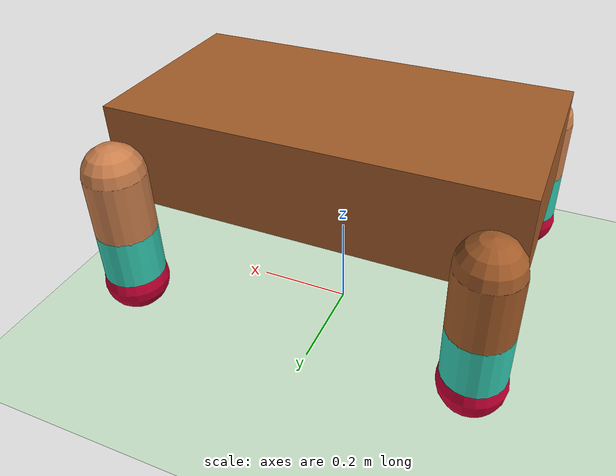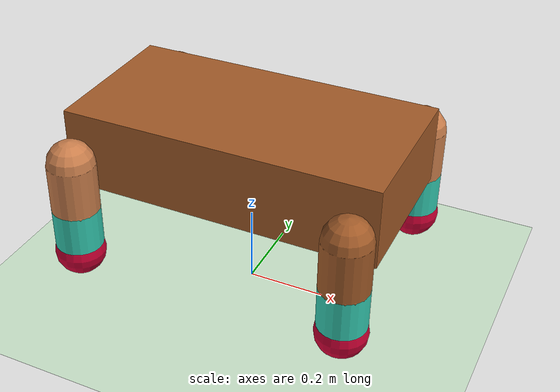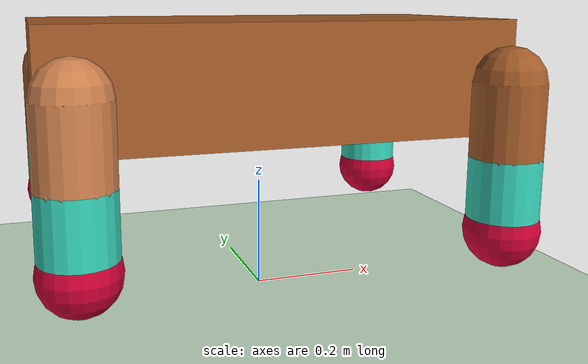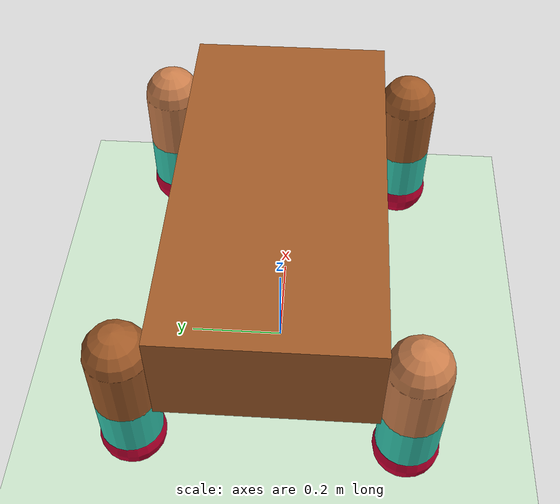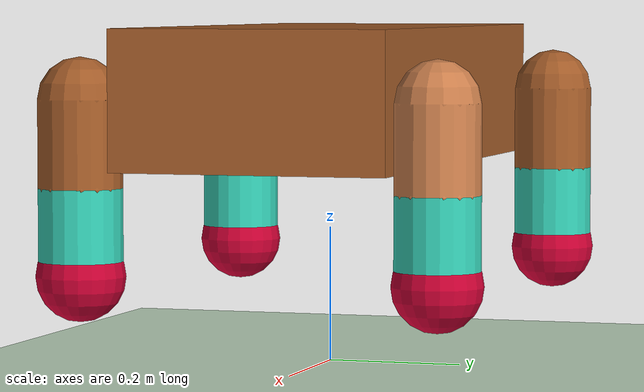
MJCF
<mujoco model="quad_world">
	<compiler angle="degree" inertiafromgeom="true" />

	<default>
		<joint armature="0" damping="1" limited="true" />
		<geom condim="3" material="matgeom" />
		<motor ctrllimited="true" ctrlrange="-.4 .4" gear="40" />
		<tendon damping="300" stiffness="4000" />
	</default>

	<option cone="pyramidal" iterations="50" jacobian="dense" solver="Newton" timestep="0.005" tolerance="1e-10" />

	<size nconmax="320" njmax="1100" nstack="10000" />

	<visual>
		<map force="0.1" zfar="30" />
		<quality shadowsize="2048" />
		<global offheight="800" offwidth="800" />
	</visual>

	<asset>
		<texture builtin="gradient" height="512" rgb1="0.3 0.5 0.7" rgb2="0 0 0" type="skybox" width="512" />
		<texture builtin="flat" height="1278" mark="cross" markrgb="1 1 1" name="texgeom" random="0.01" rgb1="0.8 0.6 0.4" rgb2="0.8 0.6 0.4" type="cube" width="127" />
		<texture builtin="checker" height="512" mark="cross" markrgb=".8 .8 .8" name="texplane" rgb1=".2 .3 .4" rgb2=".1 0.15 0.2" type="2d" width="512" />
		<material name="matgeom" rgba="0.8 0.6 .4 1" texture="texgeom" texuniform="true" />
		<material name="MatPlane" reflectance="0.5" shininess="1" specular="1" texrepeat="60 60" texture="texplane"/>
		<hfield file="heightfieldRough1.png" name="field1" size="8 8 0.05 0.15" />

	</asset>

	<worldbody>

		<light cutoff="100" diffuse="1 1 1" dir="-0 0 -1.3" directional="true" exponent="1" pos="0 0 1.3" specular=".1 .1 .1"/>
		<geom conaffinity="1" condim="3" material="MatPlane" name="floor" pos="0 0 0" rgba="0.8 0.9 0.8 1" size="40 40 40" type="plane"/>

		<body name="torso" pos="0 0 0.4">
			<freejoint name="root" />
			<geom name="torso_geom" pos="0 0 0" size="0.4 0.2 0.1" type="box" />
			<site name="gyroSensorSite" pos="0 0 0" size="0.005" />

			<body name="upper_front_left_leg" pos="0.35 0.26 0.00">
				<geom fromto="0.0 0.0 0.0 0.0 0.0 -0.125" name="upper_aux_1_geom" rgba=".8 .5 .3 1" size="0.06" type="capsule" />
				<site name="s1_1" pos="0 0 -0.125" size="0.005" />
				<body name="lower_front_left_leg" pos="0 0 -0.125">
					<geom fromto="0.0 0.0 0.0 0.0 0.0 -0.125" name="lower_aux_1_geom" rgba=".2 .8 .7 1" size="0.06" type="capsule" />
					<site name="s1_2" pos="0 0 0" size="0.005" />
					<site name="touchSite1" pos="0 0 -0.125" rgba="0.8 0 0.2 1" size="0.064 0.064 0.064" type="sphere" />
				</body>
				<joint axis="0 1 0" name="hip_1" pos="0.0 0.0 0.0" range="-90 90" type="hinge" />
				<joint axis="1 0 0" name="side_1" pos="0.0 0.0 0.0" range="-10 10" type="hinge" />
			</body>
			<body name="upper_front_right_leg" pos="0.35 -0.26 0.00">
				<geom fromto="0.0 0.0 0.0 0.0 0.0 -0.125" name="upper_aux_2_geom" size="0.06" type="capsule" />
				<site name="s2_1" pos="0 0 -0.125" size="0.005" />
				<body name="lower_front_right_leg" pos="0 0 -0.125">
					<geom fromto="0.0 0.0 0.0 0.0 0.0 -0.125" name="lower_aux_2_geom" rgba=".2 .8 .7 1" size="0.06" type="capsule" />
					<site name="s2_2" pos="0 0 0" size="0.005" />
					<site name="touchSite2" pos="0 0 -0.125" rgba="0.8 0 0.2 1" size="0.064 0.064 0.064" type="sphere" />
				</body>
				<joint axis="0 1 0" name="hip_2" pos="0.0 0.0 0.0" range="-90 90" type="hinge" />
				<joint axis="1 0 0" name="side_2" pos="0.0 0.0 0.0" range="-10 10" type="hinge" />
			</body>
			<body name="upper_left_back_leg" pos="-0.35 0.26 0.00">
				<geom fromto="0.0 0.0 0.0 0.0 0.0 -0.125" name="upper_aux_3_geom" size="0.06" type="capsule" />
				<site name="s3_1" pos="0 0 -0.125" size="0.005" />
				<body name="lower_left_back_leg" pos="0 0 -0.125">
					<geom fromto="0.0 0.0 0.0 0.0 0.0 -0.125" name="lower_aux_3_geom" rgba=".2 .8 .7 1" size="0.06" type="capsule" />
					<site name="s3_2" pos="0 0 0" size="0.005" />
					<site name="touchSite3" pos="0 0 -0.125" rgba="0.8 0 0.2 1" size="0.064 0.064 0.064" type="sphere" />
				</body>
				<joint axis="0 1 0" name="hip_3" pos="0.0 0.0 0.0" range="-90 90" type="hinge" />
				<joint axis="1 0 0" name="side_3" pos="0.0 0.0 0.0" range="-10 10" type="hinge" />
			</body>
			<body name="upper_right_back_leg" pos="-0.35 -0.26 0.0">
				<geom fromto="0.0 0.0 0.0 0.0 0.0 -0.125" name="upper_aux_4_geom" rgba=".8 .5 .3 1" size="0.06" type="capsule" />
				<site name="s4_1" pos="0 0 -0.125" size="0.005" />
				<body name="lower_right_back_leg" pos="0 0 -0.125">
					<geom fromto="0.0 0.0 0.0 0.0 0.0 -0.125" name="lower_aux_4_geom" rgba=".2 .8 .7 1" size="0.06" type="capsule" />
					<site name="s4_2" pos="0 0 0" size="0.005" />
					<site name="touchSite4" pos="0 0 -0.125" rgba="0.8 0 0.2 1" size="0.064 0.064 0.064" type="sphere" />
				</body>
				<joint axis="0 1 0" name="hip_4" pos="0.0 0.0 0.0" range="-90 90" type="hinge" />
				<joint axis="1 0 0" name="side_4" pos="0.0 0.0 0.0" range="-10 10" type="hinge" />
			</body>
		</body>
	</worldbody>

	<tendon>
		<spatial limited="true" name="tend1" range="0 1" rgba=".95 .3 .3 1" width="0.02">
			<site site="s1_1" />
			<site site="s1_2" />
		</spatial>
		<spatial limited="true" name="tend2" range="0 1" rgba=".95 .3 .3 1" width="0.02">
			<site site="s2_1" />
			<site site="s2_2" />
		</spatial>
		<spatial limited="true" name="tend3" range="0 1" rgba=".95 .3 .3 1" width="0.02">
			<site site="s3_1" />
			<site site="s3_2" />
		</spatial>
		<spatial limited="true" name="tend4" range="0 1" rgba=".95 .3 .3 1" width="0.02">
			<site site="s4_1" />
			<site site="s4_2" />
		</spatial>
	</tendon>

	<actuator>
		<motor ctrllimited="true" ctrlrange="-1.0 1.0" gear="500" tendon="tend1" />
		<motor ctrllimited="true" ctrlrange="-1.0 1.0" gear="500" tendon="tend2" />
		<motor ctrllimited="true" ctrlrange="-1.0 1.0" gear="500" tendon="tend3" />
		<motor ctrllimited="true" ctrlrange="-1.0 1.0" gear="500" tendon="tend4" />
		<motor ctrllimited="true" ctrlrange="-5.0 5.0" joint="hip_1" />
		<motor ctrllimited="true" ctrlrange="-5.0 5.0" joint="hip_2" />
		<motor ctrllimited="true" ctrlrange="-5.0 5.0" joint="hip_3" />
		<motor ctrllimited="true" ctrlrange="-5.0 5.0" joint="hip_4" />
		<motor ctrllimited="true" ctrlrange="-5.0 5.0" joint="side_1" />
		<motor ctrllimited="true" ctrlrange="-5.0 5.0" joint="side_2" />
		<motor ctrllimited="true" ctrlrange="-5.0 5.0" joint="side_3" />
		<motor ctrllimited="true" ctrlrange="-5.0 5.0" joint="side_4" />
	</actuator>

	<sensor>
		<gyro site="gyroSensorSite" />
		<touch site="touchSite1" />
	</sensor>

</mujoco>
